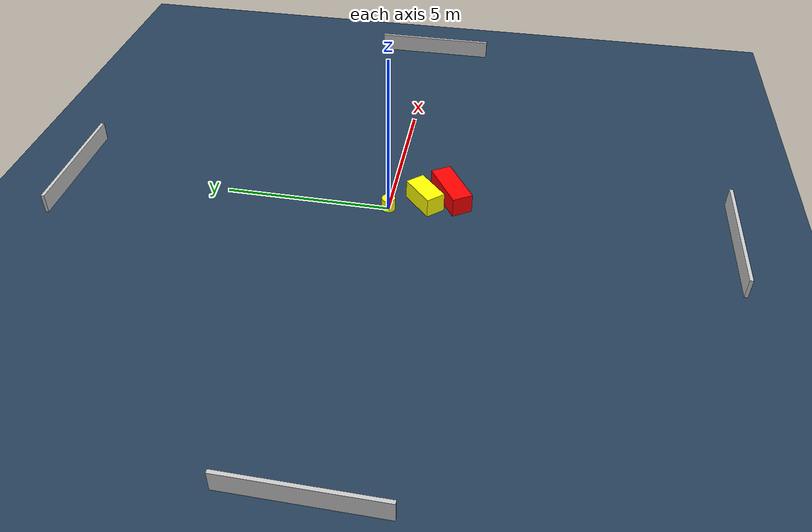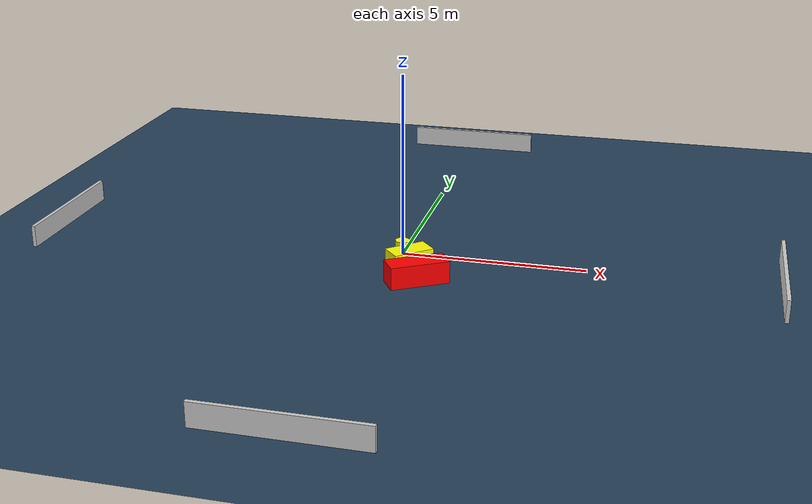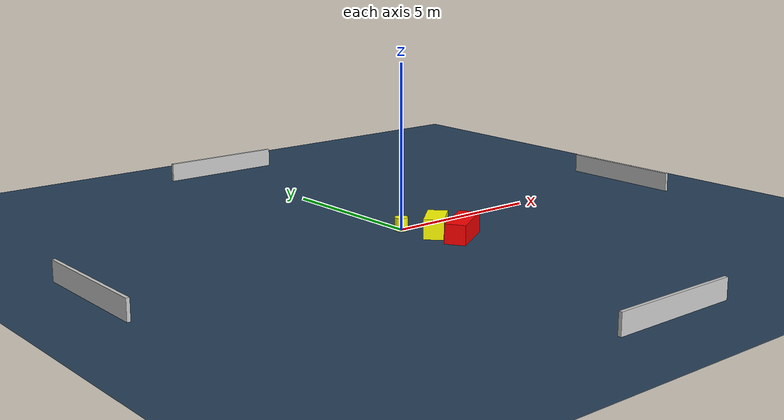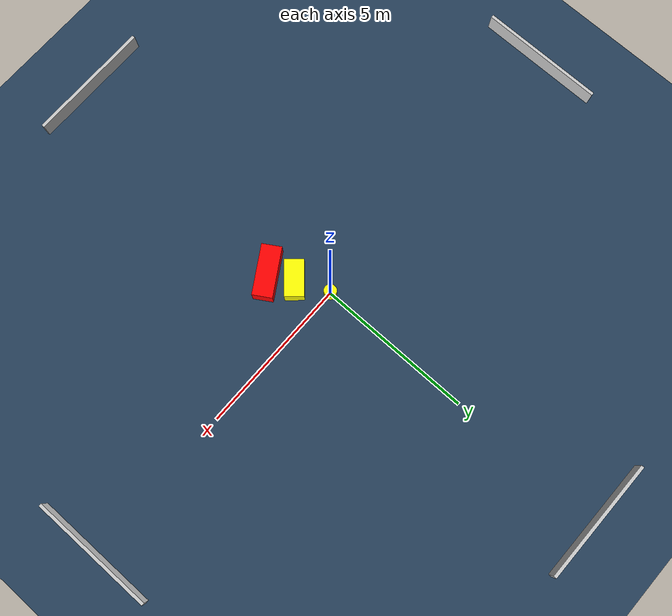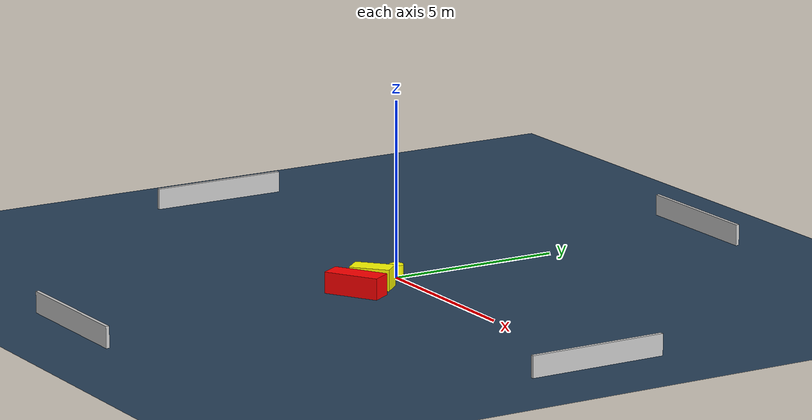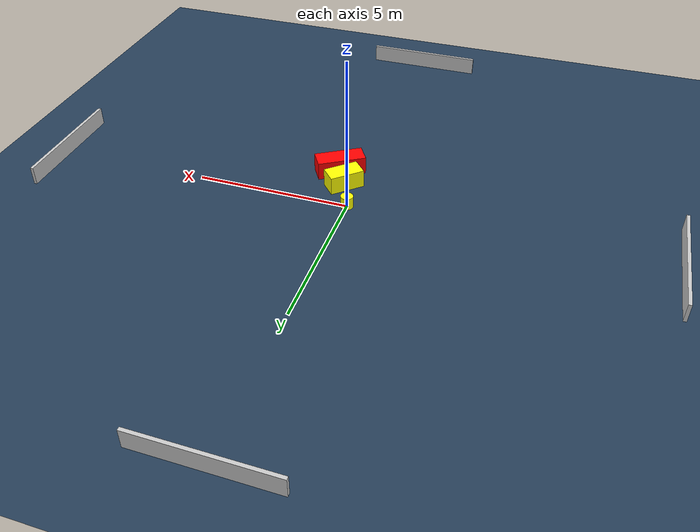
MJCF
<?xml version="1.0" ?>
<mujoco model="generated_environment">
  <option timestep="0.01" integrator="RK4" cone="elliptic"/>
  <default>
    <geom density="1"/>
  </default>
  <asset>
    <texture builtin="gradient" height="3072" name="skybox" rgb1="0.3 0.5 0.7" rgb2="0 0 0" type="skybox" width="512"/>
    <texture builtin="checker" height="300" name="groundplane" rgb1="0.2 0.3 0.4" rgb2="0.1 0.2 0.3" type="2d" width="300"/>
    <material name="groundplane" reflectance="0.2" texrepeat="5 5" texture="groundplane"/>
  </asset>
  <worldbody>
    <light dir="0 0 -1" directional="true" pos="0 0 1.5"/>
    <geom condim="3" friction="0.5 0.005 0.001" material="groundplane" name="floor" pos="0 0 0" size="0 0 0.05" type="plane"/>
    <body name="walls">
      <geom name="wall_1" condim="4" pos="-10.0 0.0 0.3" rgba="0.800000011920929 0.800000011920929 0.800000011920929 1.0" size="0.05 2.0 0.3" type="box"/>
      <geom name="wall_2" condim="4" pos="10.0 0.0 0.3" rgba="0.800000011920929 0.800000011920929 0.800000011920929 1.0" size="0.05 2.0 0.3" type="box"/>
      <geom name="wall_3" condim="4" pos="0.0 -10.0 0.3" rgba="0.800000011920929 0.800000011920929 0.800000011920929 1.0" size="2.0 0.05 0.3" type="box"/>
      <geom name="wall_4" condim="4" pos="0.0 10.0 0.3" rgba="0.800000011920929 0.800000011920929 0.800000011920929 1.0" size="2.0 0.05 0.3" type="box"/>
    </body>
    <body name="robot">
      <joint name="joint_x" type="slide" pos="0 0 0" axis="1 0 0"/>
      <joint name="joint_y" type="slide" pos="0 0 0" axis="0 1 0"/>
      <geom name="robot" type="cylinder" pos="0.0 0.0 0.2" size="0.2 0.2 0.0" mass="5.0" friction="1.0 0.005 0.0001" condim="4" rgba="1.0 1.0 0.0 1.0"/>
    </body>
    <body name="obstacle_1_movable">
      <geom name="obstacle_1_movable" condim="4" pos="0.4428885034733328 -1.0370272693420683 0.3" euler="0 0 131.99651157955563" friction="0.0 0.005 0.001" rgba="1.0 1.0 0.0 1.0" size="0.30120920640675586 0.5691895269851877 0.3" type="box" mass="0.1"/>
      <joint type="free"/>
    </body>
    <body name="obstacle_2_static">
      <geom name="obstacle_2_static" condim="4" pos="0.8201629764979833 -1.7796018527537094 0.3" euler="0 0 121.64280244036917" friction="0.0 0.005 0.001" rgba="1.0 0.0 0.0 1.0" size="0.31462031796644585 0.7933578116010855 0.3" type="box"/>
    </body>
  </worldbody>
  <actuator>
    <motor name="actuator_x" joint="joint_x" gear="1" ctrlrange="-1 1"/>
    <motor name="actuator_y" joint="joint_y" gear="1" ctrlrange="-1 1"/>
  </actuator>
</mujoco>
